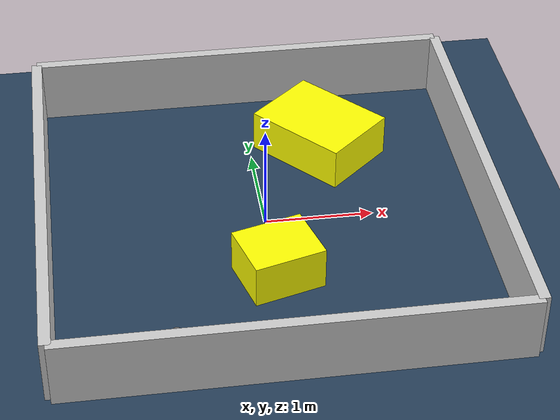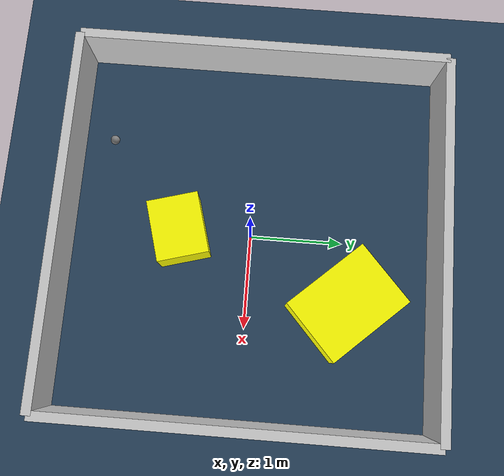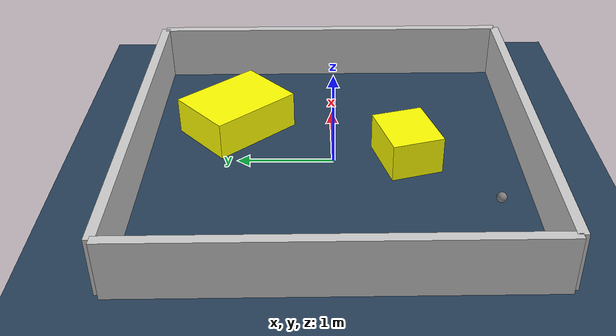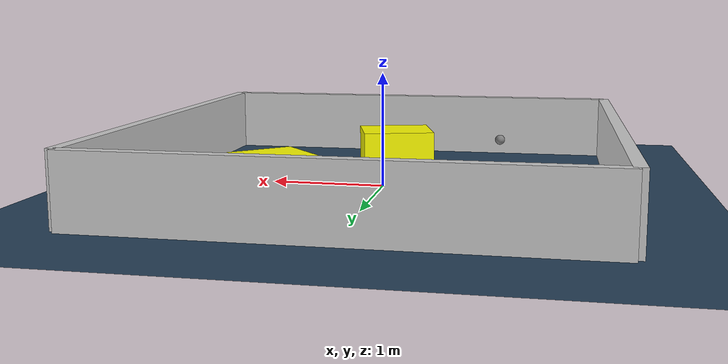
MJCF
<?xml version="1.0" ?>
<mujoco model="generated_environment">
  <option timestep="0.01" integrator="RK4" cone="elliptic"/>
  <default>
    <geom density="1"/>
  </default>
  <asset>
    <texture builtin="gradient" height="3072" rgb1="0.3 0.5 0.7" rgb2="0 0 0" type="skybox" width="512"/>
    <texture builtin="checker" height="300" mark="edge" markrgb="0.8 0.8 0.8" name="groundplane" rgb1="0.2 0.3 0.4" rgb2="0.1 0.2 0.3" type="2d" width="300"/>
    <material name="groundplane" reflectance="0.2" texrepeat="5 5" texture="groundplane" texuniform="true"/>
    <material name="robot" rgba="0.0 1.0 0.0 1"/>
  </asset>
  <worldbody>
    <light dir="0 0 -1" directional="true" pos="0 0 1.5"/>
    <geom condim="4" friction="1.0 0.005 0.001" material="groundplane" name="floor" size="0 0 0.05" type="plane"/>
    <body name="walls">
      <geom name="wall_1" condim="4" pos="-2.0 0.0 0.3" rgba="0.800000011920929 0.800000011920929 0.800000011920929 1.0" size="0.05 2.0 0.3" type="box"/>
      <geom name="wall_2" condim="4" pos="2.0 0.0 0.3" rgba="0.800000011920929 0.800000011920929 0.800000011920929 1.0" size="0.05 2.0 0.3" type="box"/>
      <geom name="wall_3" condim="4" pos="0.0 -2.0 0.3" rgba="0.800000011920929 0.800000011920929 0.800000011920929 1.0" size="2.0 0.05 0.3" type="box"/>
      <geom name="wall_4" condim="4" pos="0.0 2.0 0.3" rgba="0.800000011920929 0.800000011920929 0.800000011920929 1.0" size="2.0 0.05 0.3" type="box"/>
    </body>
    <body name="robot">
      <joint name="joint_x" type="slide" pos="0 0 0" axis="1 0 0"/>
      <joint name="joint_y" type="slide" pos="0 0 0" axis="0 1 0"/>
      <geom name="robot" type="sphere" pos="-0.9456751851656618 -1.5781500430601487 0.2" size="0.05" mass="5." friction="1.0 0.005 0.0001" condim="4"/>
      <site name="sensor_ball"/>
    </body>
    <body name="obstacle_1_movable">
      <geom name="obstacle_1_movable" condim="4" pos="0.011817350498246837 -0.7683284785675323 0.2" euler="0 0 15.81870561359866" friction="1.0 0.005 0.001" rgba="1 1 0 1" size="0.32891474870871745 0.2746021634399949 0.2" type="box" mass="0.1"/>
      <joint type="free"/>
    </body>
    <body name="obstacle_2_movable">
      <geom name="obstacle_2_movable" condim="4" pos="0.6701541494057326 1.054519685969352 0.2" euler="0 0 41.99831174528618" friction="1.0 0.005 0.001" rgba="1 1 0 1" size="0.3811506689513948 0.504166490761246 0.2" type="box" mass="0.1"/>
      <joint type="free"/>
    </body>
  </worldbody>
  <actuator>
    <motor name="actuator_x" joint="joint_x" gear="1" ctrlrange="-1 1"/>
    <motor name="actuator_y" joint="joint_y" gear="1" ctrlrange="-1 1"/>
  </actuator>
</mujoco>
